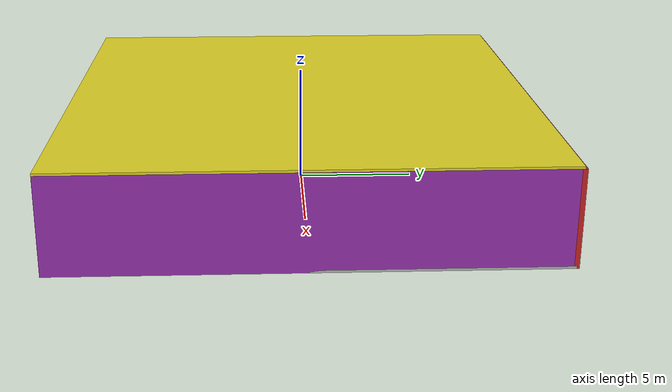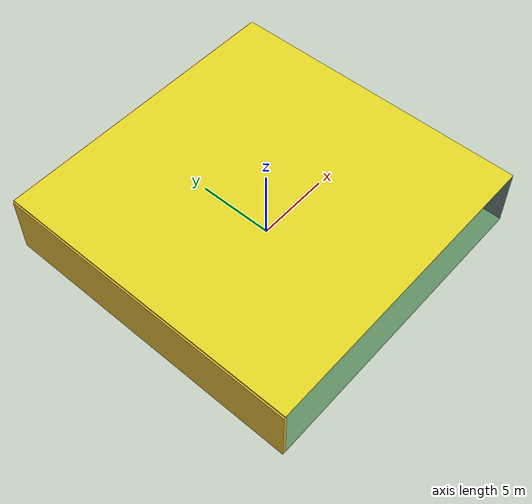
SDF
<sdf version="1.4">
 <world name="default">
  <physics type="ode">
   <max_step_size>0.001</max_step_size>
   <real_time_factor>1</real_time_factor>
   <real_time_update_rate>1000</real_time_update_rate>
   <gravity>0 0 -9.8</gravity>
  </physics>
  <scene><ambient>0.4 0.4 0.4 1</ambient><background>0.7 0.7 0.7 1</background><shadows>1</shadows></scene>
  <model name="Surrounding">
   <static>1</static>
   <link name="Ceiling">
    <collision name="Ceiling_Collision"><geometry><box><size>20 20 0.1</size></box></geometry></collision>
    <visual name="Ceiling_Visual">
     <geometry><box><size>20 20 0.1</size></box></geometry>
     <material>
      <script><uri>file://media/materials/scripts/gazebo.material</uri><name>Gazebo/Yellow</name></script>
     </material>
    </visual>
    <pose>0 0 4.05 0 0 0</pose>
   </link>
   <link name="Wall_South">
    <collision name="Wall_South_Collision">
     <geometry><box><size>20 0 4</size></box></geometry>
     <pose>0 0 2 0 -0 0</pose>
    </collision>
    <visual name="Wall_South_Visual">
     <pose>0 0 2 0 -0 0</pose>
     <geometry><box><size>20 0 4</size></box></geometry>
     <material>
      <script><uri>file://media/materials/scripts/gazebo.material</uri><name>Gazebo/GreenTransparent</name></script>
     </material>
    </visual>
    <velocity_decay><linear>0</linear><angular>0</angular></velocity_decay>
    <pose>0 -10 0 0 -0 0</pose>
   </link>
   <link name="Wall_East">
    <collision name="Wall_21_Collision">
     <geometry><box><size>20 0 4</size></box></geometry>
     <pose>0 0 2 0 -0 0</pose>
    </collision>
    <visual name="Wall_21_Visual">
     <pose>0 0 2 0 -0 0</pose>
     <geometry><box><size>20 0 4</size></box></geometry>
     <material>
      <script><uri>file://media/materials/scripts/gazebo.material</uri><name>Gazebo/PurpleGlow</name></script>
     </material>
    </visual>
    <velocity_decay><linear>0</linear><angular>0</angular></velocity_decay>
    <pose>10 0 0 0 -0 1.5708</pose>
   </link>
   <link name="Wall_North">
    <collision name="Wall_22_Collision">
     <geometry><box><size>20 0.2 4</size></box></geometry>
     <pose>0 0 2 0 -0 0</pose>
    </collision>
    <visual name="Wall_22_Visual">
     <pose>0 0 2 0 -0 0</pose>
     <geometry><box><size>20 0.2 4</size></box></geometry>
     <material>
      <script><uri>file://media/materials/scripts/gazebo.material</uri><name>Gazebo/Red</name></script>
     </material>
    </visual>
    <velocity_decay><linear>0</linear><angular>0</angular></velocity_decay>
    <pose>0 10 0 0 -0 0</pose>
   </link>
   <link name="Wall_West">
    <collision name="Wall_23_Collision">
     <geometry><box><size>20 0.2 4</size></box></geometry>
     <pose>0 0 2 0 -0 0</pose>
    </collision>
    <visual name="Wall_23_Visual">
     <pose>0 0 2 0 -0 0</pose>
     <geometry><box><size>20 0.2 4</size></box></geometry>
     <material>
      <script><uri>file://media/materials/scripts/gazebo.material</uri><name>Gazebo/Gold</name></script>
     </material>
    </visual>
    <velocity_decay><linear>0</linear><angular>0</angular></velocity_decay>
    <pose>-10 0 0 0 0 -1.5708</pose>
   </link>
   <link name="Ground_link">
    <collision name="collision">
     <pose>0 0 .05 0 -0 0</pose>
     <geometry><box><size>20 20 0.1</size></box></geometry>
    </collision>
    <visual name="visual">
     <pose>0 0 .05 0 -0 0</pose>
     <geometry><box><size>20 20 0.1</size></box></geometry>
     <material>
      <script><uri>file://media/materials/scripts/gazebo.material</uri><name>Gazebo/JointAnchor</name></script>
     </material>
    </visual>
   </link>
   <static>1</static>
  </model>
  <spherical_coordinates>
   <surface_model>EARTH_WGS84</surface_model>
   <latitude_deg>0</latitude_deg>
   <longitude_deg>0</longitude_deg>
   <elevation>0</elevation>
   <heading_deg>0</heading_deg>
  </spherical_coordinates>
  <light name="lightball_0" type="diffuse">
   <diffuse>0.8 0.8 0.8 1</diffuse>
   <specular>0.2 0.2 0.2 1</specular>
   <attenuation>
    <range>100</range>
    <constant>0.7</constant>
    <linear>0.01</linear>
    <quadratic>0.001</quadratic>
   </attenuation>
   <direction>-0.5 0.1 -0.9</direction>
   <pose>1.506756029 2.6072066561 0.53892616628 0 0 0</pose>
  </light>
  <light name="lightball_1" type="diffuse">
   <diffuse>0.8 0.8 0.8 1</diffuse>
   <specular>0.2 0.2 0.2 1</specular>
   <attenuation>
    <range>100</range>
    <constant>0.7</constant>
    <linear>0.01</linear>
    <quadratic>0.001</quadratic>
   </attenuation>
   <direction>-0.5 0.1 -0.9</direction>
   <pose>1.78138327758 -3.22820139103 2.45173057708 0 0 0</pose>
  </light>
  <light name="lightball_2" type="diffuse">
   <diffuse>0.8 0.8 0.8 1</diffuse>
   <specular>0.2 0.2 0.2 1</specular>
   <attenuation>
    <range>100</range>
    <constant>0.7</constant>
    <linear>0.01</linear>
    <quadratic>0.001</quadratic>
   </attenuation>
   <direction>-0.5 0.1 -0.9</direction>
   <pose>9.06770467321 4.51368430757 3.11289905479 0 0 0</pose>
  </light>
  <light name="lightball_3" type="diffuse">
   <diffuse>0.8 0.8 0.8 1</diffuse>
   <specular>0.2 0.2 0.2 1</specular>
   <attenuation>
    <range>100</range>
    <constant>0.7</constant>
    <linear>0.01</linear>
    <quadratic>0.001</quadratic>
   </attenuation>
   <direction>-0.5 0.1 -0.9</direction>
   <pose>-4.61598569764 6.33220701992 1.48029917431 0 0 0</pose>
  </light>
  <light name="lightball_4" type="diffuse">
   <diffuse>0.8 0.8 0.8 1</diffuse>
   <specular>0.2 0.2 0.2 1</specular>
   <attenuation>
    <range>100</range>
    <constant>0.7</constant>
    <linear>0.01</linear>
    <quadratic>0.001</quadratic>
   </attenuation>
   <direction>-0.5 0.1 -0.9</direction>
   <pose>3.31735749992 -4.07144017648 0.513571831841 0 0 0</pose>
  </light>
  <light name="lightball_5" type="diffuse">
   <diffuse>0.8 0.8 0.8 1</diffuse>
   <specular>0.2 0.2 0.2 1</specular>
   <attenuation>
    <range>100</range>
    <constant>0.7</constant>
    <linear>0.01</linear>
    <quadratic>0.001</quadratic>
   </attenuation>
   <direction>-0.5 0.1 -0.9</direction>
   <pose>3.35734890655 6.20855590843 2.47128392319 0 0 0</pose>
  </light>
  <include><uri>model://cabinet</uri><pose>-7.56417819284 7.14036619966 0 0 0 0.121641974026</pose></include>
  <include><uri>model://cabinet</uri><pose>-1.36052179754 0.890293447057 0 0 0 3.08257690356</pose></include>
 </world>
</sdf>

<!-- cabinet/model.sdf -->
<sdf version="1.5">
  <model name="cabinet">
    <static>true</static>
    <link name="cabinet_bottom_plate">
      <inertial>
        <pose>0 0 -1 0 0 0</pose>
        <inertia>
          <ixx>2.050000</ixx>
          <ixy>0</ixy>
          <ixz>0</ixz>
          <iyy>2.050000</iyy>
          <iyz>0</iyz>
          <izz>2.050000</izz>
        </inertia>
        <mass>25.000000</mass>
      </inertial>
      <collision name="cabinet_bottom_plate_geom">
        <pose>0 0 0.010000 0 0 0</pose>
        <geometry>
          <box>
            <size>0.450000 0.450000 0.020000</size>
          </box>
        </geometry>
      </collision>
      <visual name="cabinet_bottom_plate_geom_visual">
        <pose>0 0 0.010000 0 0 0</pose>
        <geometry>
          <box>
            <size>0.450000 0.450000 0.020000</size>
          </box>
        </geometry>
        <material>
          <script>
            <uri>model://media/materials/scripts/gazebo.material</uri>
            <name>Gazebo/Wood</name>
          </script>
        </material>
      </visual>
      <collision name="cabinet_bottom_plate_geom_cabinet_back_plate">
        <pose>0.235000 0 0.510000 0 0 0</pose>
        <geometry>
          <box>
            <size>0.020000 0.450000 1.020000</size>
          </box>
        </geometry>
      </collision>
      <visual name="cabinet_bottom_plate_geom_cabinet_back_plate_visual">
        <pose>0.235000 0 0.510000 0 0 0</pose>
        <geometry>
          <box>
            <size>0.020000 0.450000 1.020000</size>
          </box>
        </geometry>
        <material>
          <script>
            <uri>model://media/materials/scripts/gazebo.material</uri>
            <name>Gazebo/Wood</name>
          </script>
        </material>
      </visual>
      <collision name="cabinet_bottom_plate_geom_cabinet_left_plate">
        <pose>0 0.235000 0.510000 0 0 0</pose>
        <geometry>
          <box>
            <size>0.450000 0.020000 1.020000</size>
          </box>
        </geometry>
      </collision>
      <visual name="cabinet_bottom_plate_geom_cabinet_left_plate_visual">
        <pose>0 0.235000 0.510000 0 0 0</pose>
        <geometry>
          <box>
            <size>0.450000 0.020000 1.020000</size>
          </box>
        </geometry>
        <material>
          <script>
            <uri>model://media/materials/scripts/gazebo.material</uri>
            <name>Gazebo/Wood</name>
          </script>
        </material>
      </visual>
      <collision name="cabinet_bottom_plate_geom_cabinet_middle_plate">
        <pose>0 0 0.510000 0 0 0</pose>
        <geometry>
          <box>
            <size>0.450000 0.450000 0.020000</size>
          </box>
        </geometry>
      </collision>
      <visual name="cabinet_bottom_plate_geom_cabinet_middle_plate_visual">
        <pose>0 0 0.510000 0 0 0</pose>
        <geometry>
          <box>
            <size>0.450000 0.450000 0.020000</size>
          </box>
        </geometry>
        <material>
          <script>
            <uri>model://media/materials/scripts/gazebo.material</uri>
            <name>Gazebo/Wood</name>
          </script>
        </material>
      </visual>
      <collision name="cabinet_bottom_plate_geom_cabinet_right_plate">
        <pose>0 -0.235000 0.510000 0 0 0</pose>
        <geometry>
          <box>
            <size>0.450000 0.020000 1.020000</size>
          </box>
        </geometry>
      </collision>
      <visual name="cabinet_bottom_plate_geom_cabinet_right_plate_visual">
        <pose>0 -0.235000 0.510000 0 0 0</pose>
        <geometry>
          <box>
            <size>0.450000 0.020000 1.020000</size>
          </box>
        </geometry>
        <material>
          <script>
            <uri>model://media/materials/scripts/gazebo.material</uri>
            <name>Gazebo/Wood</name>
          </script>
        </material>
      </visual>
      <collision name="cabinet_bottom_plate_geom_cabinet_top_plate">
        <pose>0 0 1.010000 0 0 0</pose>
        <geometry>
          <box>
            <size>0.450000 0.450000 0.020000</size>
          </box>
        </geometry>
      </collision>
      <visual name="cabinet_bottom_plate_geom_cabinet_top_plate_visual">
        <pose>0 0 1.010000 0 0 0</pose>
        <geometry>
          <box>
            <size>0.450000 0.450000 0.020000</size>
          </box>
        </geometry>
        <material>
          <script>
            <uri>model://media/materials/scripts/gazebo.material</uri>
            <name>Gazebo/Wood</name>
          </script>
        </material>
      </visual>
    </link>
  </model>
</sdf>
